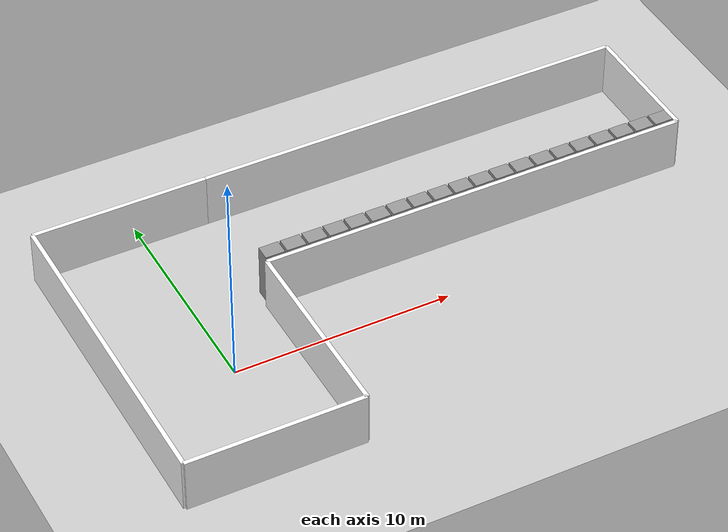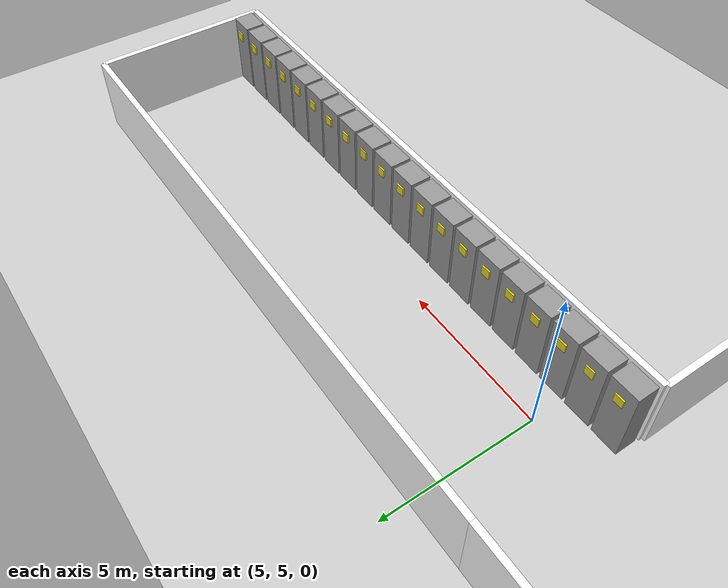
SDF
<sdf version="1.7">
 <world name="default">
  <light name="sun" type="directional">
   <pose>0 0 10 0 -0 0</pose>
   <diffuse>0.8 0.8 0.8 1</diffuse>
   <specular>0.2 0.2 0.2 1</specular>
   <attenuation>
    <range>1000</range>
    <constant>0.9</constant>
    <linear>0.01</linear>
    <quadratic>0.001</quadratic>
   </attenuation>
   <direction>-0.5 0.1 -0.9</direction>
   <spot><inner_angle>0</inner_angle><outer_angle>0</outer_angle><falloff>0</falloff></spot>
  </light>
  <model name="ground_plane">
   <static>1</static>
   <link name="link">
    <collision name="collision">
     <geometry><plane><normal>0 0 1</normal><size>100 100</size></plane></geometry>
     <surface>
      <contact><collide_bitmask>65535</collide_bitmask></contact>
      <friction><ode><mu>100</mu><mu2>50</mu2></ode></friction>
     </surface>
    </collision>
    <visual name="visual">
     <cast_shadows>0</cast_shadows>
     <geometry><plane><normal>0 0 1</normal><size>100 100</size></plane></geometry>
     <material>
      <script><uri>file://media/materials/scripts/gazebo.material</uri><name>Gazebo/Grey</name></script>
     </material>
    </visual>
   </link>
  </model>
  <gravity>0 0 -9.8</gravity>
  <magnetic_field>6e-06 2.3e-05 -4.2e-05</magnetic_field>
  <atmosphere type="adiabatic"/>
  <physics type="ode">
   <max_step_size>0.001</max_step_size>
   <real_time_factor>1</real_time_factor>
   <real_time_update_rate>1000</real_time_update_rate>
  </physics>
  <scene><ambient>0.4 0.4 0.4 1</ambient><background>0.7 0.7 0.7 1</background><shadows>1</shadows></scene>
  <spherical_coordinates>
   <surface_model>EARTH_WGS84</surface_model>
   <latitude_deg>0</latitude_deg>
   <longitude_deg>0</longitude_deg>
   <elevation>0</elevation>
   <heading_deg>0</heading_deg>
  </spherical_coordinates>
  <model name="l_shaped_corridor">
   <static>1</static>
   <link name="short_top_wall">
    <collision name="collision">
     <geometry><box><size>8.0 0.2 2.5</size></box></geometry>
     <pose>0 0 1.25 0 0 0</pose>
    </collision>
    <visual name="visual">
     <pose>0 0 1.25 0 0 0</pose>
     <geometry><box><size>8.0 0.2 2.5</size></box></geometry>
     <material>
      <script><uri>file://media/materials/scripts/gazebo.material</uri><name>Gazebo/Concrete</name></script>
      <ambient>1 1 1 1</ambient>
     </material>
    </visual>
    <pose>-1.0 9.0 0 0 0 0</pose>
   </link>
   <link name="short_bottom_wall">
    <collision name="collision">
     <geometry><box><size>8.0 0.2 2.5</size></box></geometry>
     <pose>0 0 1.25 0 0 0</pose>
    </collision>
    <visual name="visual">
     <pose>0 0 1.25 0 0 0</pose>
     <geometry><box><size>8.0 0.2 2.5</size></box></geometry>
     <material>
      <script><uri>file://media/materials/scripts/gazebo.material</uri><name>Gazebo/Concrete</name></script>
      <ambient>1 1 1 1</ambient>
     </material>
    </visual>
    <pose>-1.0 -6.0 0 0 0 0</pose>
   </link>
   <link name="short_left_wall">
    <collision name="collision">
     <geometry><box><size>0.2 15.0 2.5</size></box></geometry>
     <pose>0 0 1.25 0 0 0</pose>
    </collision>
    <visual name="visual">
     <pose>0 0 1.25 0 0 0</pose>
     <geometry><box><size>0.2 15.0 2.5</size></box></geometry>
     <material>
      <script><uri>file://media/materials/scripts/gazebo.material</uri><name>Gazebo/Concrete</name></script>
      <ambient>1 1 1 1</ambient>
     </material>
    </visual>
    <pose>-5.0 1.5 0 0 0 0</pose>
   </link>
   <link name="long_top_wall">
    <collision name="collision">
     <geometry><box><size>20.0 0.2 2.5</size></box></geometry>
     <pose>0 0 1.25 0 0 0</pose>
    </collision>
    <visual name="visual">
     <pose>0 0 1.25 0 0 0</pose>
     <geometry><box><size>20.0 0.2 2.5</size></box></geometry>
     <material>
      <script><uri>file://media/materials/scripts/gazebo.material</uri><name>Gazebo/Concrete</name></script>
      <ambient>1 1 1 1</ambient>
     </material>
    </visual>
    <pose>13.0 9.0 0 0 0 0</pose>
   </link>
   <link name="long_bottom_wall">
    <collision name="collision">
     <geometry><box><size>20.0 0.2 2.5</size></box></geometry>
     <pose>0 0 1.25 0 0 0</pose>
    </collision>
    <visual name="visual">
     <pose>0 0 1.25 0 0 0</pose>
     <geometry><box><size>20.0 0.2 2.5</size></box></geometry>
     <material>
      <script><uri>file://media/materials/scripts/gazebo.material</uri><name>Gazebo/Concrete</name></script>
      <ambient>1 1 1 1</ambient>
     </material>
    </visual>
    <pose>13.0 3.0 0 0 0 0</pose>
   </link>
   <link name="long_right_wall">
    <collision name="collision">
     <geometry><box><size>0.2 6.0 2.5</size></box></geometry>
     <pose>0 0 1.25 0 0 0</pose>
    </collision>
    <visual name="visual">
     <pose>0 0 1.25 0 0 0</pose>
     <geometry><box><size>0.2 6.0 2.5</size></box></geometry>
     <material>
      <script><uri>file://media/materials/scripts/gazebo.material</uri><name>Gazebo/Concrete</name></script>
      <ambient>1 1 1 1</ambient>
     </material>
    </visual>
    <pose>23.0 6.0 0 0 0 0</pose>
   </link>
   <link name="connector_bottom_wall">
    <collision name="collision">
     <geometry><box><size>0.2 9.0 2.5</size></box></geometry>
     <pose>0 0 1.25 0 0 0</pose>
    </collision>
    <visual name="visual">
     <pose>0 0 1.25 0 0 0</pose>
     <geometry><box><size>0.2 9.0 2.5</size></box></geometry>
     <material>
      <script><uri>file://media/materials/scripts/gazebo.material</uri><name>Gazebo/Concrete</name></script>
      <ambient>1 1 1 1</ambient>
     </material>
    </visual>
    <pose>3.0 -1.5 0 0 0 0</pose>
   </link>
   <link name="cabinet_1">
    <collision name="collision">
     <geometry><box><size>0.9 0.7 2.5</size></box></geometry>
     <pose>0 0 1.25 0 0 0</pose>
    </collision>
    <visual name="visual">
     <pose>0 0 1.25 0 0 0</pose>
     <geometry><box><size>0.9 0.7 2.5</size></box></geometry>
     <material>
      <script><uri>file://media/materials/scripts/gazebo.material</uri><name>Gazebo/Grey</name></script>
      <ambient>0.6 0.6 0.6 1</ambient>
     </material>
    </visual>
    <pose>3.5 3.55 0 0 0 0</pose>
   </link>
   <link name="label_1">
    <visual name="visual">
     <pose>0 0 2.0 0 0 0</pose>
     <geometry><box><size>0.3 0.05 0.3</size></box></geometry>
     <material>
      <script><uri>file://media/materials/scripts/gazebo.material</uri><name>Gazebo/Yellow</name></script>
      <ambient>1 1 0 1</ambient>
     </material>
    </visual>
    <pose>3.5 3.95 0 0 0 0</pose>
   </link>
   <link name="cabinet_2">
    <collision name="collision">
     <geometry><box><size>0.9 0.7 2.5</size></box></geometry>
     <pose>0 0 1.25 0 0 0</pose>
    </collision>
    <visual name="visual">
     <pose>0 0 1.25 0 0 0</pose>
     <geometry><box><size>0.9 0.7 2.5</size></box></geometry>
     <material>
      <script><uri>file://media/materials/scripts/gazebo.material</uri><name>Gazebo/Grey</name></script>
      <ambient>0.6 0.6 0.6 1</ambient>
     </material>
    </visual>
    <pose>4.5 3.55 0 0 0 0</pose>
   </link>
   <link name="label_2">
    <visual name="visual">
     <pose>0 0 2.0 0 0 0</pose>
     <geometry><box><size>0.3 0.05 0.3</size></box></geometry>
     <material>
      <script><uri>file://media/materials/scripts/gazebo.material</uri><name>Gazebo/Yellow</name></script>
      <ambient>1 1 0 1</ambient>
     </material>
    </visual>
    <pose>4.5 3.95 0 0 0 0</pose>
   </link>
   <link name="cabinet_3">
    <collision name="collision">
     <geometry><box><size>0.9 0.7 2.5</size></box></geometry>
     <pose>0 0 1.25 0 0 0</pose>
    </collision>
    <visual name="visual">
     <pose>0 0 1.25 0 0 0</pose>
     <geometry><box><size>0.9 0.7 2.5</size></box></geometry>
     <material>
      <script><uri>file://media/materials/scripts/gazebo.material</uri><name>Gazebo/Grey</name></script>
      <ambient>0.6 0.6 0.6 1</ambient>
     </material>
    </visual>
    <pose>5.5 3.55 0 0 0 0</pose>
   </link>
   <link name="cabinet_4">
    <collision name="collision">
     <geometry><box><size>0.9 0.7 2.5</size></box></geometry>
     <pose>0 0 1.25 0 0 0</pose>
    </collision>
    <visual name="visual">
     <pose>0 0 1.25 0 0 0</pose>
     <geometry><box><size>0.9 0.7 2.5</size></box></geometry>
     <material>
      <script><uri>file://media/materials/scripts/gazebo.material</uri><name>Gazebo/Grey</name></script>
      <ambient>0.6 0.6 0.6 1</ambient>
     </material>
    </visual>
    <pose>6.5 3.55 0 0 0 0</pose>
   </link>
   <link name="cabinet_5">
    <collision name="collision">
     <geometry><box><size>0.9 0.7 2.5</size></box></geometry>
     <pose>0 0 1.25 0 0 0</pose>
    </collision>
    <visual name="visual">
     <pose>0 0 1.25 0 0 0</pose>
     <geometry><box><size>0.9 0.7 2.5</size></box></geometry>
     <material>
      <script><uri>file://media/materials/scripts/gazebo.material</uri><name>Gazebo/Grey</name></script>
      <ambient>0.6 0.6 0.6 1</ambient>
     </material>
    </visual>
    <pose>7.5 3.55 0 0 0 0</pose>
   </link>
   <link name="cabinet_6">
    <collision name="collision">
     <geometry><box><size>0.9 0.7 2.5</size></box></geometry>
     <pose>0 0 1.25 0 0 0</pose>
    </collision>
    <visual name="visual">
     <pose>0 0 1.25 0 0 0</pose>
     <geometry><box><size>0.9 0.7 2.5</size></box></geometry>
     <material>
      <script><uri>file://media/materials/scripts/gazebo.material</uri><name>Gazebo/Grey</name></script>
      <ambient>0.6 0.6 0.6 1</ambient>
     </material>
    </visual>
    <pose>8.5 3.55 0 0 0 0</pose>
   </link>
   <link name="cabinet_7">
    <collision name="collision">
     <geometry><box><size>0.9 0.7 2.5</size></box></geometry>
     <pose>0 0 1.25 0 0 0</pose>
    </collision>
    <visual name="visual">
     <pose>0 0 1.25 0 0 0</pose>
     <geometry><box><size>0.9 0.7 2.5</size></box></geometry>
     <material>
      <script><uri>file://media/materials/scripts/gazebo.material</uri><name>Gazebo/Grey</name></script>
      <ambient>0.6 0.6 0.6 1</ambient>
     </material>
    </visual>
    <pose>9.5 3.55 0 0 0 0</pose>
   </link>
   <link name="cabinet_8">
    <collision name="collision">
     <geometry><box><size>0.9 0.7 2.5</size></box></geometry>
     <pose>0 0 1.25 0 0 0</pose>
    </collision>
    <visual name="visual">
     <pose>0 0 1.25 0 0 0</pose>
     <geometry><box><size>0.9 0.7 2.5</size></box></geometry>
     <material>
      <script><uri>file://media/materials/scripts/gazebo.material</uri><name>Gazebo/Grey</name></script>
      <ambient>0.6 0.6 0.6 1</ambient>
     </material>
    </visual>
    <pose>10.5 3.55 0 0 0 0</pose>
   </link>
   <link name="cabinet_9">
    <collision name="collision">
     <geometry><box><size>0.9 0.7 2.5</size></box></geometry>
     <pose>0 0 1.25 0 0 0</pose>
    </collision>
    <visual name="visual">
     <pose>0 0 1.25 0 0 0</pose>
     <geometry><box><size>0.9 0.7 2.5</size></box></geometry>
     <material>
      <script><uri>file://media/materials/scripts/gazebo.material</uri><name>Gazebo/Grey</name></script>
      <ambient>0.6 0.6 0.6 1</ambient>
     </material>
    </visual>
    <pose>11.5 3.55 0 0 0 0</pose>
   </link>
   <link name="cabinet_10">
    <collision name="collision">
     <geometry><box><size>0.9 0.7 2.5</size></box></geometry>
     <pose>0 0 1.25 0 0 0</pose>
    </collision>
    <visual name="visual">
     <pose>0 0 1.25 0 0 0</pose>
     <geometry><box><size>0.9 0.7 2.5</size></box></geometry>
     <material>
      <script><uri>file://media/materials/scripts/gazebo.material</uri><name>Gazebo/Grey</name></script>
      <ambient>0.6 0.6 0.6 1</ambient>
     </material>
    </visual>
    <pose>12.5 3.55 0 0 0 0</pose>
   </link>
   <link name="cabinet_11">
    <collision name="collision">
     <geometry><box><size>0.9 0.7 2.5</size></box></geometry>
     <pose>0 0 1.25 0 0 0</pose>
    </collision>
    <visual name="visual">
     <pose>0 0 1.25 0 0 0</pose>
     <geometry><box><size>0.9 0.7 2.5</size></box></geometry>
     <material>
      <script><uri>file://media/materials/scripts/gazebo.material</uri><name>Gazebo/Grey</name></script>
      <ambient>0.6 0.6 0.6 1</ambient>
     </material>
    </visual>
    <pose>13.5 3.55 0 0 0 0</pose>
   </link>
   <link name="cabinet_12">
    <collision name="collision">
     <geometry><box><size>0.9 0.7 2.5</size></box></geometry>
     <pose>0 0 1.25 0 0 0</pose>
    </collision>
    <visual name="visual">
     <pose>0 0 1.25 0 0 0</pose>
     <geometry><box><size>0.9 0.7 2.5</size></box></geometry>
     <material>
      <script><uri>file://media/materials/scripts/gazebo.material</uri><name>Gazebo/Grey</name></script>
      <ambient>0.6 0.6 0.6 1</ambient>
     </material>
    </visual>
    <pose>14.5 3.55 0 0 0 0</pose>
   </link>
   <link name="cabinet_13">
    <collision name="collision">
     <geometry><box><size>0.9 0.7 2.5</size></box></geometry>
     <pose>0 0 1.25 0 0 0</pose>
    </collision>
    <visual name="visual">
     <pose>0 0 1.25 0 0 0</pose>
     <geometry><box><size>0.9 0.7 2.5</size></box></geometry>
     <material>
      <script><uri>file://media/materials/scripts/gazebo.material</uri><name>Gazebo/Grey</name></script>
      <ambient>0.6 0.6 0.6 1</ambient>
     </material>
    </visual>
    <pose>15.5 3.55 0 0 0 0</pose>
   </link>
   <link name="cabinet_14">
    <collision name="collision">
     <geometry><box><size>0.9 0.7 2.5</size></box></geometry>
     <pose>0 0 1.25 0 0 0</pose>
    </collision>
    <visual name="visual">
     <pose>0 0 1.25 0 0 0</pose>
     <geometry><box><size>0.9 0.7 2.5</size></box></geometry>
     <material>
      <script><uri>file://media/materials/scripts/gazebo.material</uri><name>Gazebo/Grey</name></script>
      <ambient>0.6 0.6 0.6 1</ambient>
     </material>
    </visual>
    <pose>16.5 3.55 0 0 0 0</pose>
   </link>
   <link name="cabinet_15">
    <collision name="collision">
     <geometry><box><size>0.9 0.7 2.5</size></box></geometry>
     <pose>0 0 1.25 0 0 0</pose>
    </collision>
    <visual name="visual">
     <pose>0 0 1.25 0 0 0</pose>
     <geometry><box><size>0.9 0.7 2.5</size></box></geometry>
     <material>
      <script><uri>file://media/materials/scripts/gazebo.material</uri><name>Gazebo/Grey</name></script>
      <ambient>0.6 0.6 0.6 1</ambient>
     </material>
    </visual>
    <pose>17.5 3.55 0 0 0 0</pose>
   </link>
   <link name="cabinet_16">
    <collision name="collision">
     <geometry><box><size>0.9 0.7 2.5</size></box></geometry>
     <pose>0 0 1.25 0 0 0</pose>
    </collision>
    <visual name="visual">
     <pose>0 0 1.25 0 0 0</pose>
     <geometry><box><size>0.9 0.7 2.5</size></box></geometry>
     <material>
      <script><uri>file://media/materials/scripts/gazebo.material</uri><name>Gazebo/Grey</name></script>
      <ambient>0.6 0.6 0.6 1</ambient>
     </material>
    </visual>
    <pose>18.5 3.55 0 0 0 0</pose>
   </link>
   <link name="cabinet_17">
    <collision name="collision">
     <geometry><box><size>0.9 0.7 2.5</size></box></geometry>
     <pose>0 0 1.25 0 0 0</pose>
    </collision>
    <visual name="visual">
     <pose>0 0 1.25 0 0 0</pose>
     <geometry><box><size>0.9 0.7 2.5</size></box></geometry>
     <material>
      <script><uri>file://media/materials/scripts/gazebo.material</uri><name>Gazebo/Grey</name></script>
      <ambient>0.6 0.6 0.6 1</ambient>
     </material>
    </visual>
    <pose>19.5 3.55 0 0 0 0</pose>
   </link>
   <link name="cabinet_18">
    <collision name="collision">
     <geometry><box><size>0.9 0.7 2.5</size></box></geometry>
     <pose>0 0 1.25 0 0 0</pose>
    </collision>
    <visual name="visual">
     <pose>0 0 1.25 0 0 0</pose>
     <geometry><box><size>0.9 0.7 2.5</size></box></geometry>
     <material>
      <script><uri>file://media/materials/scripts/gazebo.material</uri><name>Gazebo/Grey</name></script>
      <ambient>0.6 0.6 0.6 1</ambient>
     </material>
    </visual>
    <pose>20.5 3.55 0 0 0 0</pose>
   </link>
   <link name="cabinet_19">
    <collision name="collision">
     <geometry><box><size>0.9 0.7 2.5</size></box></geometry>
     <pose>0 0 1.25 0 0 0</pose>
    </collision>
    <visual name="visual">
     <pose>0 0 1.25 0 0 0</pose>
     <geometry><box><size>0.9 0.7 2.5</size></box></geometry>
     <material>
      <script><uri>file://media/materials/scripts/gazebo.material</uri><name>Gazebo/Grey</name></script>
      <ambient>0.6 0.6 0.6 1</ambient>
     </material>
    </visual>
    <pose>21.5 3.55 0 0 0 0</pose>
   </link>
   <link name="cabinet_20">
    <collision name="collision">
     <geometry><box><size>0.9 0.7 2.5</size></box></geometry>
     <pose>0 0 1.25 0 0 0</pose>
    </collision>
    <visual name="visual">
     <pose>0 0 1.25 0 0 0</pose>
     <geometry><box><size>0.9 0.7 2.5</size></box></geometry>
     <material>
      <script><uri>file://media/materials/scripts/gazebo.material</uri><name>Gazebo/Grey</name></script>
      <ambient>0.6 0.6 0.6 1</ambient>
     </material>
    </visual>
    <pose>22.5 3.55 0 0 0 0</pose>
   </link>
   <link name="label_3">
    <visual name="visual">
     <pose>0 0 2.0 0 0 0</pose>
     <geometry><box><size>0.3 0.05 0.3</size></box></geometry>
     <material>
      <script><uri>file://media/materials/scripts/gazebo.material</uri><name>Gazebo/Yellow</name></script>
      <ambient>1 1 0 1</ambient>
     </material>
    </visual>
    <pose>5.5 3.95 0 0 0 0</pose>
   </link>
   <link name="label_4">
    <visual name="visual">
     <pose>0 0 2.0 0 0 0</pose>
     <geometry><box><size>0.3 0.05 0.3</size></box></geometry>
     <material>
      <script><uri>file://media/materials/scripts/gazebo.material</uri><name>Gazebo/Yellow</name></script>
      <ambient>1 1 0 1</ambient>
     </material>
    </visual>
    <pose>6.5 3.95 0 0 0 0</pose>
   </link>
   <link name="label_5">
    <visual name="visual">
     <pose>0 0 2.0 0 0 0</pose>
     <geometry><box><size>0.3 0.05 0.3</size></box></geometry>
     <material>
      <script><uri>file://media/materials/scripts/gazebo.material</uri><name>Gazebo/Yellow</name></script>
      <ambient>1 1 0 1</ambient>
     </material>
    </visual>
    <pose>7.5 3.95 0 0 0 0</pose>
   </link>
   <link name="label_6">
    <visual name="visual">
     <pose>0 0 2.0 0 0 0</pose>
     <geometry><box><size>0.3 0.05 0.3</size></box></geometry>
     <material>
      <script><uri>file://media/materials/scripts/gazebo.material</uri><name>Gazebo/Yellow</name></script>
      <ambient>1 1 0 1</ambient>
     </material>
    </visual>
    <pose>8.5 3.95 0 0 0 0</pose>
   </link>
   <link name="label_7">
    <visual name="visual">
     <pose>0 0 2.0 0 0 0</pose>
     <geometry><box><size>0.3 0.05 0.3</size></box></geometry>
     <material>
      <script><uri>file://media/materials/scripts/gazebo.material</uri><name>Gazebo/Yellow</name></script>
      <ambient>1 1 0 1</ambient>
     </material>
    </visual>
    <pose>9.5 3.95 0 0 0 0</pose>
   </link>
   <link name="label_8">
    <visual name="visual">
     <pose>0 0 2.0 0 0 0</pose>
     <geometry><box><size>0.3 0.05 0.3</size></box></geometry>
     <material>
      <script><uri>file://media/materials/scripts/gazebo.material</uri><name>Gazebo/Yellow</name></script>
      <ambient>1 1 0 1</ambient>
     </material>
    </visual>
    <pose>10.5 3.95 0 0 0 0</pose>
   </link>
   <link name="label_9">
    <visual name="visual">
     <pose>0 0 2.0 0 0 0</pose>
     <geometry><box><size>0.3 0.05 0.3</size></box></geometry>
     <material>
      <script><uri>file://media/materials/scripts/gazebo.material</uri><name>Gazebo/Yellow</name></script>
      <ambient>1 1 0 1</ambient>
     </material>
    </visual>
    <pose>11.5 3.95 0 0 0 0</pose>
   </link>
   <link name="label_10">
    <visual name="visual">
     <pose>0 0 2.0 0 0 0</pose>
     <geometry><box><size>0.3 0.05 0.3</size></box></geometry>
     <material>
      <script><uri>file://media/materials/scripts/gazebo.material</uri><name>Gazebo/Yellow</name></script>
      <ambient>1 1 0 1</ambient>
     </material>
    </visual>
    <pose>12.5 3.95 0 0 0 0</pose>
   </link>
   <link name="label_11">
    <visual name="visual">
     <pose>0 0 2.0 0 0 0</pose>
     <geometry><box><size>0.3 0.05 0.3</size></box></geometry>
     <material>
      <script><uri>file://media/materials/scripts/gazebo.material</uri><name>Gazebo/Yellow</name></script>
      <ambient>1 1 0 1</ambient>
     </material>
    </visual>
    <pose>13.5 3.95 0 0 0 0</pose>
   </link>
   <link name="label_12">
    <visual name="visual">
     <pose>0 0 2.0 0 0 0</pose>
     <geometry><box><size>0.3 0.05 0.3</size></box></geometry>
     <material>
      <script><uri>file://media/materials/scripts/gazebo.material</uri><name>Gazebo/Yellow</name></script>
      <ambient>1 1 0 1</ambient>
     </material>
    </visual>
    <pose>14.5 3.95 0 0 0 0</pose>
   </link>
   <link name="label_13">
    <visual name="visual">
     <pose>0 0 2.0 0 0 0</pose>
     <geometry><box><size>0.3 0.05 0.3</size></box></geometry>
     <material>
      <script><uri>file://media/materials/scripts/gazebo.material</uri><name>Gazebo/Yellow</name></script>
      <ambient>1 1 0 1</ambient>
     </material>
    </visual>
    <pose>15.5 3.95 0 0 0 0</pose>
   </link>
   <link name="label_14">
    <visual name="visual">
     <pose>0 0 2.0 0 0 0</pose>
     <geometry><box><size>0.3 0.05 0.3</size></box></geometry>
     <material>
      <script><uri>file://media/materials/scripts/gazebo.material</uri><name>Gazebo/Yellow</name></script>
      <ambient>1 1 0 1</ambient>
     </material>
    </visual>
    <pose>16.5 3.95 0 0 0 0</pose>
   </link>
   <link name="label_15">
    <visual name="visual">
     <pose>0 0 2.0 0 0 0</pose>
     <geometry><box><size>0.3 0.05 0.3</size></box></geometry>
     <material>
      <script><uri>file://media/materials/scripts/gazebo.material</uri><name>Gazebo/Yellow</name></script>
      <ambient>1 1 0 1</ambient>
     </material>
    </visual>
    <pose>17.5 3.95 0 0 0 0</pose>
   </link>
   <link name="label_16">
    <visual name="visual">
     <pose>0 0 2.0 0 0 0</pose>
     <geometry><box><size>0.3 0.05 0.3</size></box></geometry>
     <material>
      <script><uri>file://media/materials/scripts/gazebo.material</uri><name>Gazebo/Yellow</name></script>
      <ambient>1 1 0 1</ambient>
     </material>
    </visual>
    <pose>18.5 3.95 0 0 0 0</pose>
   </link>
   <link name="label_17">
    <visual name="visual">
     <pose>0 0 2.0 0 0 0</pose>
     <geometry><box><size>0.3 0.05 0.3</size></box></geometry>
     <material>
      <script><uri>file://media/materials/scripts/gazebo.material</uri><name>Gazebo/Yellow</name></script>
      <ambient>1 1 0 1</ambient>
     </material>
    </visual>
    <pose>19.5 3.95 0 0 0 0</pose>
   </link>
   <link name="label_18">
    <visual name="visual">
     <pose>0 0 2.0 0 0 0</pose>
     <geometry><box><size>0.3 0.05 0.3</size></box></geometry>
     <material>
      <script><uri>file://media/materials/scripts/gazebo.material</uri><name>Gazebo/Yellow</name></script>
      <ambient>1 1 0 1</ambient>
     </material>
    </visual>
    <pose>20.5 3.95 0 0 0 0</pose>
   </link>
   <link name="label_19">
    <visual name="visual">
     <pose>0 0 2.0 0 0 0</pose>
     <geometry><box><size>0.3 0.05 0.3</size></box></geometry>
     <material>
      <script><uri>file://media/materials/scripts/gazebo.material</uri><name>Gazebo/Yellow</name></script>
      <ambient>1 1 0 1</ambient>
     </material>
    </visual>
    <pose>21.5 3.95 0 0 0 0</pose>
   </link>
   <link name="label_20">
    <visual name="visual">
     <pose>0 0 2.0 0 0 0</pose>
     <geometry><box><size>0.3 0.05 0.3</size></box></geometry>
     <material>
      <script><uri>file://media/materials/scripts/gazebo.material</uri><name>Gazebo/Yellow</name></script>
      <ambient>1 1 0 1</ambient>
     </material>
    </visual>
    <pose>22.5 3.95 0 0 0 0</pose>
   </link>
  </model>
 </world>
</sdf>
